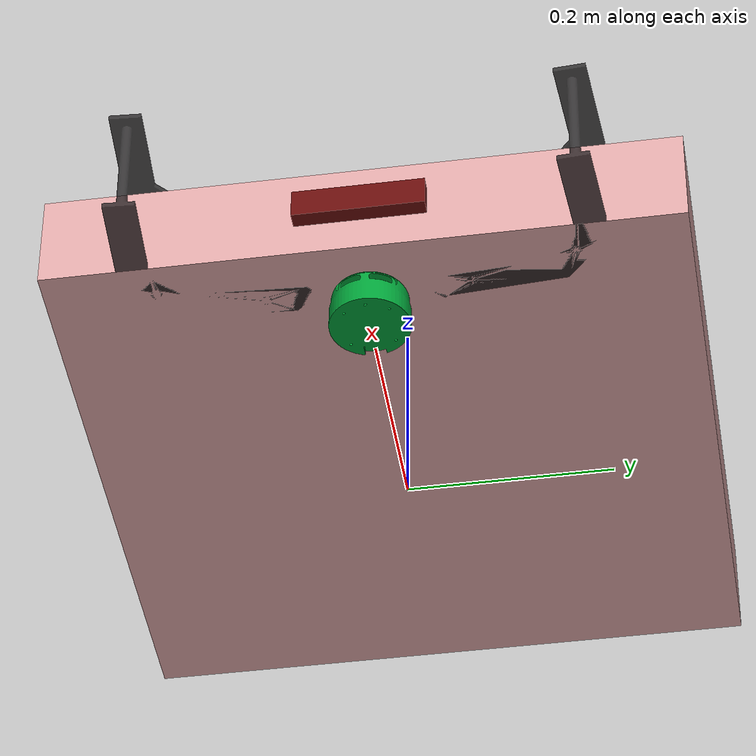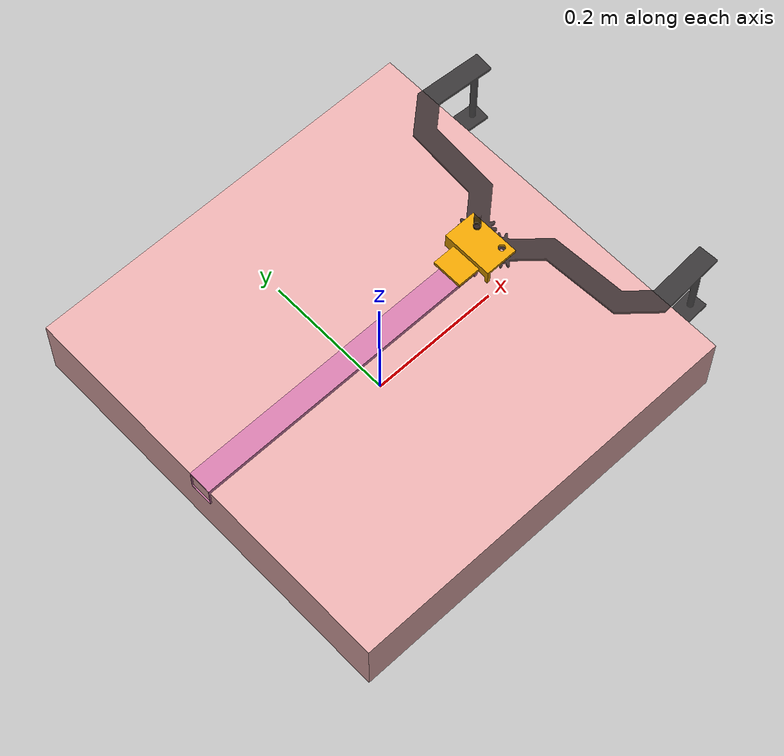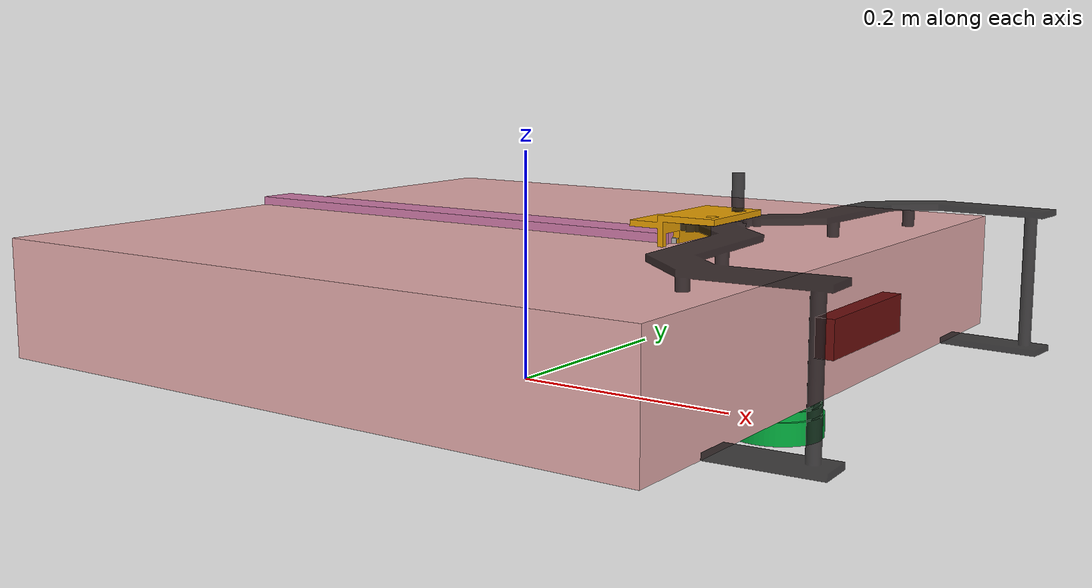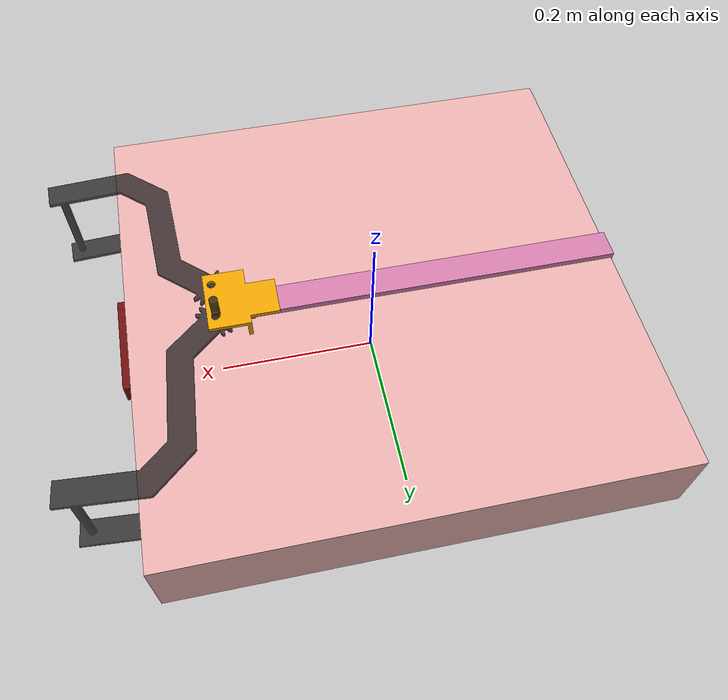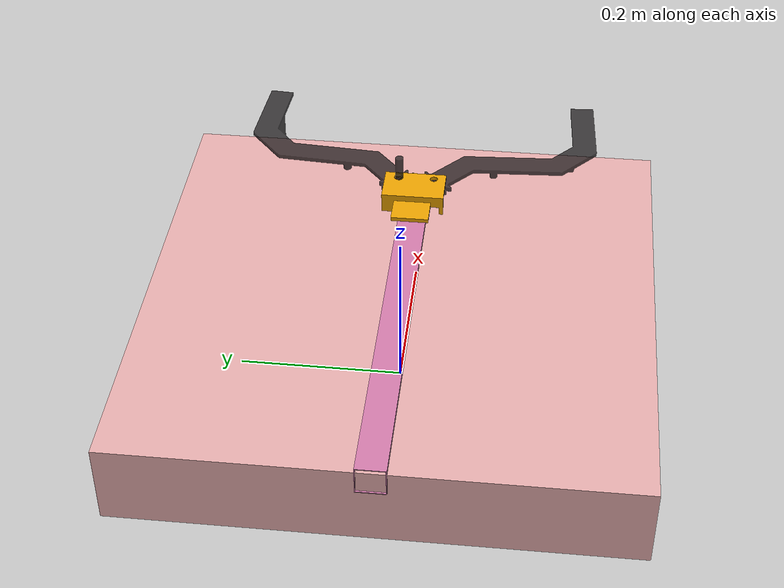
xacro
<?xml version="1.0"?>
<robot name="abu_bot" xmlns:xacro="http://ros.org/wiki/xacro">
    <!-- ROBOT -->
    <xacro:include filename="$(find abu_description)/urdf/base.urdf.xacro" />
    <xacro:include filename="$(find abu_description)/urdf/properties.urdf.xacro" />
    <xacro:include filename="$(find abu_description)/urdf/sensors/imu.urdf.xacro" />
    <xacro:include filename="$(find abu_description)/urdf/robot_control.urdf.xacro" />
    <xacro:include filename="$(find abu_description)/urdf/sensors/depth_sensor.urdf.xacro" />
    <xacro:include filename="$(find abu_description)/urdf/sensors/generic_laser.urdf.xacro" />

    <xacro:base
        length="${base_length}"
        width="${base_width}"
        height="${base_height}"
        mass="${base_mass}"
        wheel_radius="${wheel_dir_radius}"
        wheel_pos_z="${wheel_pos_z}"
    />

    <xacro:imu/>

    <xacro:generic_laser>
        <xacro:insert_block name="laser_pose" />
    </xacro:generic_laser>

    <xacro:depth_sensor>
        <xacro:insert_block name="depth_sensor_pose" />
    </xacro:depth_sensor>

    <xacro:robot_controller/>

    <!-- DRIVE -->
    <xacro:include filename="$(find abu_description)/urdf/drive.urdf.xacro" />
    <xacro:include filename="$(find abu_description)/urdf/swerve_wheel/wheel.urdf.xacro" />
    <xacro:include filename="$(find abu_description)/urdf/swerve_wheel/wheel.transmission.xacro" />
    <xacro:include filename="$(find abu_description)/urdf/swerve_wheel/steering.transmission.xacro" />

    <!-- TELESCOPE -->
    <xacro:include filename="$(find abu_description)/urdf/telescope/silder_1.urdf.xacro" />
    <xacro:include filename="$(find abu_description)/urdf/telescope/silder_2.urdf.xacro" />
    <xacro:include filename="$(find abu_description)/urdf/telescope/silder_wrist.urdf.xacro" />
    <xacro:include filename="$(find abu_description)/urdf/telescope/tele_hand.urdf.xacro" />

    <xacro:silder_1
    length="${silder_1_length}"
    width="${silder_1_width}"
    height="${silder_1_height}"
    pos_x="${silder_1_pos_x}"
    pos_y="${silder_1_pos_y}"
    pos_z="${silder_1_pos_z}"
    mass="${silder_1_mass}"
    />
    <xacro:silder_2
    length="${silder_2_length}"
    width="${silder_2_width}"
    height="${silder_2_height}"
    pos_x="${silder_2_pos_x}"
    pos_y="${silder_2_pos_y}"
    pos_z="${silder_2_pos_z}"
    mass="${silder_2_mass}"
    />
    <xacro:silder_wrist
    length="${silder_wrist_length}"
    width="${silder_wrist_width}"
    height="${silder_wrist_height}"
    pos_x="${silder_wrist_pos_x}"
    pos_y="${silder_wrist_pos_y}"
    pos_z="${silder_wrist_pos_z}"
    mass="${silder_wrist_mass}"
    />
    <xacro:tele_hand
    side="right"
    length="${silder_hand_length}"
    width="${silder_hand_width}"
    height="${silder_hand_height}"
    pos_x="${silder_hand_pos_x}"
    pos_y="${silder_hand_pos_y}"
    pos_z="${silder_hand_pos_z}"
    mass="${silder_hand_mass}"
    />
    <xacro:tele_hand
    side="left"
    length="${silder_hand_length}"
    width="${silder_hand_width}"
    height="${silder_hand_height}"
    pos_x="${silder_hand_pos_x - 0.004}"
    pos_y="${-silder_hand_pos_y}"
    pos_z="${silder_hand_pos_z}"
    mass="${silder_hand_mass}"
    />

</robot>

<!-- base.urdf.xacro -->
<robot xmlns:xacro="http://ros.org/wiki/xacro">
    <xacro:macro name="base" params="length width height mass wheel_radius wheel_pos_z">
        <link name="base_footprint"/>

        <link name="base_link">
        <visual>
            <origin xyz="0 0 0" rpy="0 0 0"/>
            <geometry>
            <box size="${length} ${width} ${height}"/>
            </geometry>
            <material name="yellow">
            <color rgba="0.8784 0.6627 0.6627 1.0"/>
            </material>
        </visual>

        <collision>
            <origin xyz="0 0 0" rpy="0 0 0"/>
            <geometry>
            <box size="${length} ${width} ${height}"/>
            </geometry>
        </collision>

        <inertial>
            <origin xyz="0 0 0" rpy="0 0 0"/>
            <mass value="${mass}"/>
            <inertia ixx="${(1/12) * mass * ((width  * width)  + (height * height))}" ixy="0.0" ixz="0.0"
                    iyy="${(1/12) * mass * ((length * length) + (height * height))}" iyz="0.0"
                    izz="${(1/12) * mass * ((length * length) + (width  * width))}"/>
        </inertial>
        </link>

        <gazebo reference="base_link">
        <visual>
            <material>
            <ambient>0.8392 0.6314 0.0 1.0</ambient>
            <diffuse>0.8392 0.6314 0.0 1.0</diffuse>
            <specular>0.99 0.99 0.99 1.0</specular>
            <emissive>0.0 0.0 0.0 0.0</emissive>
            </material>
        </visual>
        </gazebo>

        <joint name="base_to_footprint" type="fixed">
        <parent link="base_footprint"/>
        <child link="base_link"/>
        <origin xyz="0 0 ${wheel_radius - wheel_pos_z}" rpy="0 0 0"/>
        </joint>
    </xacro:macro>
</robot>

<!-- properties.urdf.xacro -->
<robot xmlns:xacro="http://ros.org/wiki/xacro">
    <xacro:property name="base_length" value="0.6" />
    <xacro:property name="base_width" value="0.6" />
    <xacro:property name="base_height" value="0.1" />
    <xacro:property name="base_mass" value="10" />

    <xacro:property name="wheel_dir_radius" value="0.035" />
    <xacro:property name="wheel_dir_width" value="0.051" />
    <xacro:property name="wheel_rot_radius" value="0.035" />
    <xacro:property name="wheel_rot_width" value="0.067" />
    <xacro:property name="wheel_pos_x" value="0.2675" />
    <xacro:property name="wheel_pos_y" value="0.2675" />
    <xacro:property name="wheel_pos_z" value="-0.05" />
    <xacro:property name="wheel_dir_pos_z" value="-0.056" />
    <xacro:property name="wheel_mass" value="0.5" />
    <xacro:property name="wheel_torque" value="20" />

    <xacro:property name="silder_1_length" value="0.505" />
    <xacro:property name="silder_1_width" value="0.035" />
    <xacro:property name="silder_1_height" value="0.035" />
    <xacro:property name="silder_1_pos_x" value="-0.3" />
    <xacro:property name="silder_1_pos_y" value="0" />
    <xacro:property name="silder_1_pos_z" value="0.04" />
    <xacro:property name="silder_1_mass" value="0.1" />
    <xacro:property name="silder_2_length" value="0.035" />
    <xacro:property name="silder_2_width" value="0.03" />
    <xacro:property name="silder_2_height" value="0.03" />
    <xacro:property name="silder_2_pos_x" value="0.24" />
    <xacro:property name="silder_2_pos_y" value="0" />
    <xacro:property name="silder_2_pos_z" value="0" />
    <xacro:property name="silder_2_mass" value="0.1" />
    <xacro:property name="silder_wrist_length" value="0.11" />
    <xacro:property name="silder_wrist_width" value="0.085" />
    <xacro:property name="silder_wrist_height" value="0.085" />
    <xacro:property name="silder_wrist_pos_x" value="0.25" />
    <xacro:property name="silder_wrist_pos_y" value="0" />
    <xacro:property name="silder_wrist_pos_z" value="0" />
    <xacro:property name="silder_wrist_mass" value="0.1" />
    <xacro:property name="silder_hand_length" value="0.22" />
    <xacro:property name="silder_hand_width" value="0.22" />
    <xacro:property name="silder_hand_height" value="0.125" />
    <xacro:property name="silder_hand_pos_x" value="0.004" />
    <xacro:property name="silder_hand_pos_y" value="-0.022" />
    <xacro:property name="silder_hand_pos_z" value="0.03" />
    <xacro:property name="silder_hand_mass" value="0.1" />

    <xacro:property name="laser_pose">
        <origin xyz="0.25 0 -0.055" rpy="0 0 0"/>
    </xacro:property>

    <xacro:property name="depth_sensor_pose">
        <origin xyz="0.3 0 0" rpy="0 0 0"/>
    </xacro:property>
</robot>

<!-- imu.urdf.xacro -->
<robot xmlns:xacro="http://ros.org/wiki/xacro">
    <xacro:macro name="imu">
        <link name="imu_link"/>

        <joint name="imu_to_base_link" type="fixed">
        <parent link="base_link"/>
        <child link="imu_link"/>
        <origin xyz="0 0 0" rpy="0 0 0"/>
        </joint>

        <gazebo reference="imu_link">
        <gravity>true</gravity>
        <sensor name="imu_sensor" type="imu">
        <always_on>true</always_on>
        <update_rate>20</update_rate>
        <visualize>true</visualize>
        <topic>__default_topic__</topic>
        <plugin filename="libgazebo_ros_imu_sensor.so" name="imu_plugin">
            <ros>
                <remapping>~/out:=imu/data</remapping>
            </ros>
            <topicName>imu/data</topicName>
            <bodyName>imu_link</bodyName>
            <updateRateHZ>10.0</updateRateHZ>
            <gaussianNoise>0.0</gaussianNoise>
            <xyzOffset>0 0 0</xyzOffset>
            <rpyOffset>0 0 0</rpyOffset>
            <frameName>imu_link</frameName>
            <initialOrientationAsReference>false</initialOrientationAsReference>
        </plugin>
        <pose>0 0 0 0 0 0</pose>
        </sensor>
        </gazebo>
    </xacro:macro>
</robot>

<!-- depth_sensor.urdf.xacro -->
<robot xmlns:xacro="http://ros.org/wiki/xacro">
    <xacro:property name="M_PI" value="3.1415926535897931" />
    <xacro:macro name="depth_sensor" params="*origin">
        <link name="camera_link">
        <visual>
            <origin xyz="0 0 0" rpy="0 0 0"/>
            <geometry>
            <box size="0.030 0.124 0.030"/>
            </geometry>
            <material name="red">
            <color rgba="0.416 0.051 0.047 1.0"/>
            </material>
        </visual>

        <collision>
            <origin xyz="0 0 0" rpy="0 0 0"/>
            <geometry>
            <box size="0.030 0.124 0.030"/>
            </geometry>
        </collision>

        <inertial>
            <origin xyz="0 0 0" rpy="0 0 0"/>
            <mass value="0.135"/>
            <inertia ixx="${(1/12) * 0.135 * ((0.124  * 0.124)  + (0.030 * 0.030))}" ixy="0.0" ixz="0.0"
                    iyy="${(1/12) * 0.135 * ((0.030 * 0.030) + (0.030 * 0.030))}" iyz="0.0"
                    izz="${(1/12) * 0.135 * ((0.030 * 0.030) + (0.124  * 0.124))}"/>
        </inertial>
        </link>

        <gazebo reference="camera_link">
        <visual>
            <material>
            <ambient>0.416 0.051 0.047 1.0</ambient>
            <diffuse>0.416 0.051 0.047 1.0</diffuse>
            <specular>0.416 0.051 0.047 1.0</specular>
            <emissive>0.416 0.051 0.047 1.0</emissive>
            </material>
        </visual>
        </gazebo>rgb(213,28,40)

        <joint name="camera_to_base_link" type="fixed">
        <parent link="base_link"/>
        <child link="camera_link"/>
        <xacro:insert_block name="origin" />
        </joint>

        <link name="camera_depth_link"/>
        <joint name="camera_depth_joint" type="fixed">
        <origin xyz="0 0 0" rpy="-1.57 0 -1.57"/>
        <parent link="camera_link"/>
        <child link="camera_depth_link"/>
        </joint>

        <!-- https://github.com/ros-simulation/gazebo_ros_pkgs/wiki/ROS-2-Migration:-Camera#gazebo_ros_camera -->
        <gazebo reference="camera_link">
        <sensor name="camera" type="depth">
            <always_on>true</always_on>
            <update_rate>30.0</update_rate>
            <camera name="camera">
            <horizontal_fov>1.50098</horizontal_fov>
            <image>
                <width>640</width>
                <height>480</height>
                <format>R8G8B8</format>
            </image>
            </camera>
            <plugin name="camera_controller" filename="libgazebo_ros_camera.so">
            <ros>
                <remapping>/camera/camera_info:=/camera/color/camera_info</remapping>
                <remapping>/camera/image_raw:=/camera/color/image_raw</remapping>
                <remapping>/camera/points:=/camera/depth/color/points</remapping>
                <remapping>/camera/depth/image_raw:=/camera/depth/image_rect_raw</remapping>
            </ros>
            <min_depth>0.015</min_depth>
            <max_depth>3.0</max_depth>
            <hack_baseline>0.07</hack_baseline>
            <frame_name>camera_depth_link</frame_name>
            <distortion_k1>0.00000001</distortion_k1>
            <distortion_k2>0.00000001</distortion_k2>
            <distortion_k3>0.00000001</distortion_k3>
            <distortion_t1>0.00000001</distortion_t1>
            <distortion_t2>0.00000001</distortion_t2>
            </plugin>
        </sensor>

        </gazebo>
    </xacro:macro>
</robot>

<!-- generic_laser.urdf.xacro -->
<robot xmlns:xacro="http://ros.org/wiki/xacro">
    <xacro:include filename="$(find abu_description)/urdf/sensors/laser.urdf.xacro" />

    <xacro:macro name="generic_laser" params="*origin">
        <xacro:laser
        update_rate="10"
        ray_count="360"
        min_angle="-3.1416"
        max_angle="3.1416"
        min_range="0.08"
        max_range="12.0"
        frame_id="laser"
        topic_name="scan"
        >
        <xacro:insert_block name="origin" />
        </xacro:laser>
    </xacro:macro>

    <xacro:macro name="generic_base_laser" params="*origin">
        <xacro:laser
        update_rate="10"
        ray_count="360"
        min_angle="-3.1416"
        max_angle="3.1416"
        min_range="0.21"
        max_range="5.5"
        frame_id="base_laser"
        topic_name="base/scan"
        >
        <xacro:insert_block name="origin" />
        </xacro:laser>
    </xacro:macro>
</robot>

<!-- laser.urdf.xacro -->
<robot xmlns:xacro="http://ros.org/wiki/xacro">
    <xacro:property name="M_PI" value="3.1415926535897931" />
    <xacro:macro name="laser" params="*origin update_rate ray_count min_angle max_angle min_range max_range frame_id topic_name">
        <link name="${frame_id}">
        <visual>
            <origin xyz="0 0 -0.01" rpy="0 0 ${pi/2}"/>
            <geometry>
                <mesh filename="file://$(find abu_description)/urdf/model/rplidar.dae" scale="1 1 1"/>
            </geometry>
            <material name="green">
                <color rgba="0.003 0.639 0.223 1.0"/>
            </material>
        </visual>
        <collision>
            <origin xyz="0 0 -0.025" rpy="0 0 0"/>
            <geometry>
            <cylinder radius="0.0375" length="0.05"/>
            </geometry>
        </collision>

        <inertial>
            <origin xyz="0 0 0" rpy="0 0 0"/>
            <mass value="0.1"/>
            <inertia ixx="${(2/5) * 0.1 * (0.0375 * 0.0375)}" ixy="0" ixz="0"
                    iyy="${(2/5) * 0.1 * (0.0375 * 0.0375)}" iyz="0"
                    izz="${(2/5) * 0.1 * (0.0375 * 0.0375)}" />
        </inertial>
        </link>

        <gazebo reference="${frame_id}">
        <visual>
            <material>
            <ambient>0.003 0.639 0.223 1.0</ambient>
            <diffuse>0.003 0.639 0.223 1.0</diffuse>
            <specular>0.003 0.639 0.223 1.0</specular>
            <emissive>0.0 0.0 0.0 0.0</emissive>
            </material>
        </visual>
        </gazebo>

        <joint name="${frame_id}_to_base_link" type="fixed">
        <parent link="base_link"/>
        <child link="${frame_id}"/>
        <xacro:insert_block name="origin" />
        </joint>

        <gazebo reference="${frame_id}">
        <sensor type="ray" name="${frame_id}_head_hokuyo_sensor">
            <always_on>true</always_on>
            <update_rate>${update_rate}</update_rate>
            <pose>0 0 0 0 0 0</pose>
            <visualize>false</visualize>
            <ray>
            <scan>
                <horizontal>
                <samples>${ray_count}</samples>
                <resolution>1</resolution>
                <min_angle>${min_angle}</min_angle>
                <max_angle>${max_angle}</max_angle>
                </horizontal>
            </scan>
            <range>
                <min>${min_range}</min>
                <max>${max_range}</max>
                <resolution>0.01</resolution>
            </range>
            </ray>
            <plugin name="${frame_id}_gazebo_ros_head_hokuyo_controller" filename="libgazebo_ros_ray_sensor.so">
            <ros>
                <remapping>~/out:=${topic_name}</remapping>
            </ros>
            <output_type>sensor_msgs/LaserScan</output_type>
            <alwaysOn>true</alwaysOn>
            <updateRate>${update_rate}</updateRate>
            <topicName>${topic_name}</topicName>
            <frame_name>${frame_id}</frame_name>
            <output_type>sensor_msgs/LaserScan</output_type>
            </plugin>
        </sensor>
        </gazebo>
    </xacro:macro>
</robot>

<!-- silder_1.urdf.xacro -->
<robot xmlns:xacro="http://ros.org/wiki/xacro">
    <xacro:macro name="silder_1" params="length width height pos_x pos_y pos_z mass">
        <link name="silder_1_link">
        <visual>
            <origin xyz="0 0 0" rpy="0 0 ${-pi/2}"/>
            <geometry>
                <mesh filename="file://$(find abu_description)/urdf/model/silder_1.dae" scale="1 1 1"/>
            </geometry>
        </visual>
        <collision>
            <origin xyz="0 0 0" rpy="0 0 ${-pi/2}"/>
            <geometry>
                <mesh filename="file://$(find abu_description)/urdf/model/silder_1.dae" scale="1 1 1"/>
            </geometry>
        </collision>

        <inertial>
            <origin xyz="0.2 0 0" rpy="0 0 0"/>
            <mass value="${mass}"/>
            <inertia ixx="${(1/12) * mass * ((width  * width)  + (height * height))}" ixy="0.0" ixz="0.0"
                    iyy="${(1/12) * mass * ((length * length) + (height * height))}" iyz="0.0"
                    izz="${(1/12) * mass * ((length * length) + (width  * width))}"/>
        </inertial>
        </link>

        <gazebo reference="silder_1_link">
            <visual>
                <material>Gazebo/Orange</material>
            </visual>
        </gazebo>
        <joint name="silder_1_joint" type="revolute">
            <axis xyz="0 0 1" />
            <parent link="base_link"/>
            <child link="silder_1_link"/>
            <origin xyz="${pos_x} ${pos_y} ${pos_z}" rpy="0 0 0"/>
            <limit lower="-${pi}" upper="0" effort="-1" velocity="-1"/>
        </joint>
    </xacro:macro>
</robot>

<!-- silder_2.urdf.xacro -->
<robot xmlns:xacro="http://ros.org/wiki/xacro">
    <xacro:macro name="silder_2" params="length width height pos_x pos_y pos_z mass">
        <link name="silder_2_link">
        <visual>
            <origin xyz="0 0 0" rpy="0 0 ${-pi/2}"/>
            <geometry>
                <mesh filename="file://$(find abu_description)/urdf/model/silder_2.dae" scale="1 1 1"/>
            </geometry>
        </visual>
        <collision>
            <origin xyz="0 0 0" rpy="0 0 ${-pi/2}"/>
            <geometry>
                <mesh filename="file://$(find abu_description)/urdf/model/silder_2.dae" scale="1 1 1"/>
            </geometry>
        </collision>

        <inertial>
            <origin xyz="0.2 0 0" rpy="0 0 0"/>
            <mass value="${mass}"/>
            <inertia ixx="${(1/12) * mass * ((width  * width)  + (height * height))}" ixy="0.0" ixz="0.0"
                    iyy="${(1/12) * mass * ((length * length) + (height * height))}" iyz="0.0"
                    izz="${(1/12) * mass * ((length * length) + (width  * width))}"/>
        </inertial>
        </link>

        <gazebo reference="silder_2_link">
            <visual>
                <material>Gazebo/Orange</material>
            </visual>
        </gazebo>
        <joint name="silder_2_joint" type="prismatic">
            <axis xyz="1 0 0" />
            <parent link="silder_1_link"/>
            <child link="silder_2_link"/>
            <origin xyz="${pos_x} ${pos_y} ${pos_z}" rpy="0 0 0"/>
            <limit lower="0" upper="0.18" effort="-1" velocity="-1"/>
        </joint>
    </xacro:macro>
</robot>

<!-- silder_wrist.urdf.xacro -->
<robot xmlns:xacro="http://ros.org/wiki/xacro">
    <xacro:macro name="silder_wrist" params="length width height pos_x pos_y pos_z mass">
        <link name="silder_wrist_link">
        <visual>
            <origin xyz="0 0 0" rpy="0 0 0"/>
            <geometry>
                <mesh filename="file://$(find abu_description)/urdf/model/silder_wrist.dae" scale="1 1 1"/>
            </geometry>
        </visual>
        <collision>
            <origin xyz="0 0 0" rpy="0 0 0"/>
            <geometry>
                <mesh filename="file://$(find abu_description)/urdf/model/silder_wrist.dae" scale="1 1 1"/>
            </geometry>
        </collision>

        <inertial>
            <origin xyz="-0.021 0 0" rpy="0 0 0"/>
            <mass value="${mass}"/>
            <inertia ixx="${(1/12) * mass * ((width  * width)  + (height * height))}" ixy="0.0" ixz="0.0"
                    iyy="${(1/12) * mass * ((length * length) + (height * height))}" iyz="0.0"
                    izz="${(1/12) * mass * ((length * length) + (width  * width))}"/>
        </inertial>
        </link>

        <gazebo reference="silder_wrist_link">
            <visual>
                <material>Gazebo/Orange</material>
            </visual>
        </gazebo>
        <joint name="silder_wrist_joint" type="fixed">
            <axis xyz="1 0 0" />
            <parent link="silder_2_link"/>
            <child link="silder_wrist_link"/>
            <origin xyz="${pos_x} ${pos_y} ${pos_z}" rpy="0 0 0"/>
        </joint>
    </xacro:macro>
</robot>

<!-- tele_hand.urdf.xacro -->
<robot xmlns:xacro="http://ros.org/wiki/xacro">
    <xacro:macro name="tele_hand" params="side length width height pos_x pos_y pos_z mass">
        <link name="${side}_tele_hand_link">
        <visual>
            <origin xyz="0 0 0" rpy="0 0 0"/>
            <geometry>
                <xacro:if value="${side == 'right'}">
                    <mesh filename="file://$(find abu_description)/urdf/model/tele_hand_right.dae" scale="1 1 1"/>
                </xacro:if>
                <xacro:if value="${side == 'left'}">
                    <mesh filename="file://$(find abu_description)/urdf/model/tele_hand_left.dae" scale="1 1 1"/>
                </xacro:if>
            </geometry>
            <material name="gray">
                <color rgba="0.123 0.114 0.119 0.8"/>
            </material>
        </visual>
        <collision>
            <origin xyz="0.145 0 0" rpy="0 0 0"/>
            <geometry>
                <xacro:if value="${side == 'right'}">
                    <mesh filename="file://$(find abu_description)/urdf/model/tele_hand_right.dae" scale="1 1 1"/>
                </xacro:if>
                <xacro:if value="${side == 'left'}">
                    <mesh filename="file://$(find abu_description)/urdf/model/tele_hand_left.dae" scale="1 1 1"/>
                </xacro:if>
            </geometry>
        </collision>

        <inertial>
            <xacro:if value="${side == 'right'}">
                <origin xyz="0.09 -0.09 -0.06" rpy="0 0 0"/>
            </xacro:if>
            <xacro:if value="${side == 'left'}">
                <origin xyz="0.09 0.09 -0.06" rpy="0 0 0"/>
            </xacro:if>
            <mass value="${mass}"/>
            <inertia ixx="${(1/12) * mass * ((width  * width)  + (height * height))}" ixy="0.0" ixz="0.0"
                    iyy="${(1/12) * mass * ((length * length) + (height * height))}" iyz="0.0"
                    izz="${(1/12) * mass * ((length * length) + (width  * width))}"/>
        </inertial>
        </link>

        <gazebo reference="${side}_tele_hand_link">
        <visual>
            <material>
            <ambient>0.123 0.114 0.119 0.8</ambient>
            <diffuse>0.123 0.114 0.119 0.8</diffuse>
            <specular>0.123 0.114 0.119 0.8</specular>
            <emissive>0.0 0.0 0.0 0.0</emissive>
            </material>
        </visual>
        </gazebo>
        <xacro:if value="${side == 'right'}">
            <joint name="${side}_tele_hand_joint" type="revolute">
                <axis xyz="0 0 1" />
                <parent link="silder_wrist_link"/>
                <child link="${side}_tele_hand_link"/>
                <origin xyz="${pos_x} ${pos_y} ${pos_z}" rpy="0 0 0"/>
                <limit lower="0" upper="${pi/4}" effort="-1" velocity="-1"/>
            </joint>
        </xacro:if>
        <xacro:if value="${side == 'left'}">
            <joint name="${side}_tele_hand_joint" type="revolute">
                <axis xyz="0 0 -1" />
                <parent link="silder_wrist_link"/>
                <child link="${side}_tele_hand_link"/>
                <origin xyz="${pos_x} ${pos_y} ${pos_z}" rpy="0 0 0"/>
                <limit lower="0" upper="${pi/4}" effort="-1" velocity="-1"/>
            </joint>
        </xacro:if>
    </xacro:macro>
</robot>
